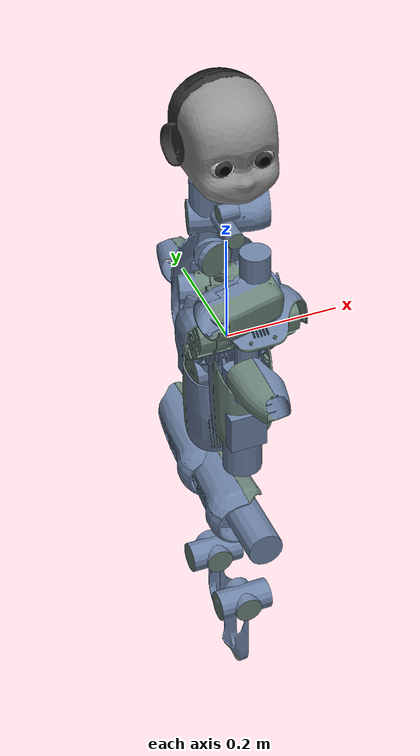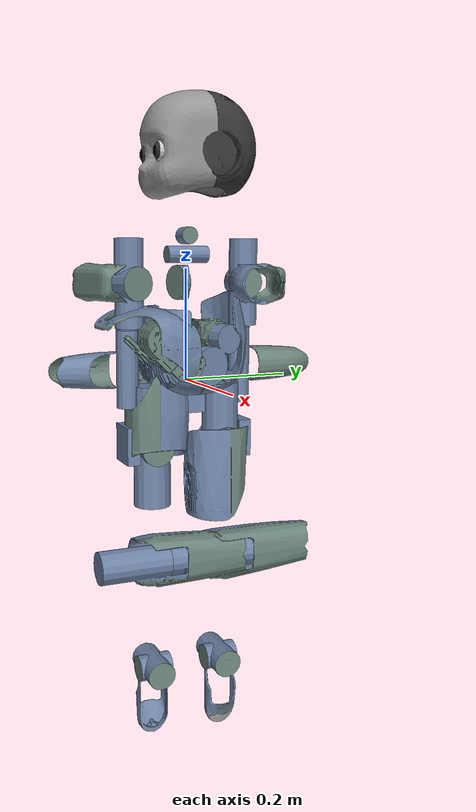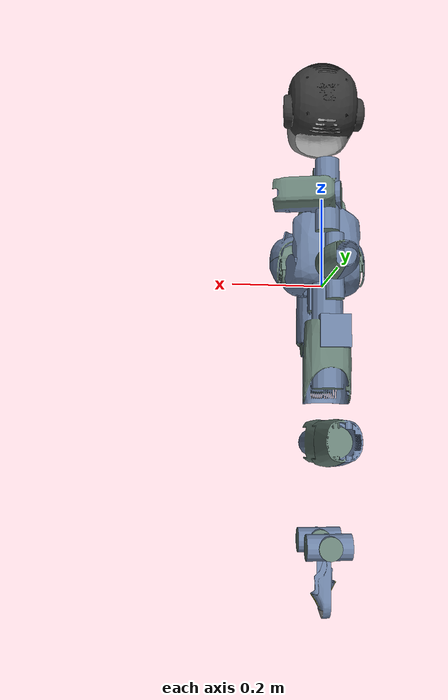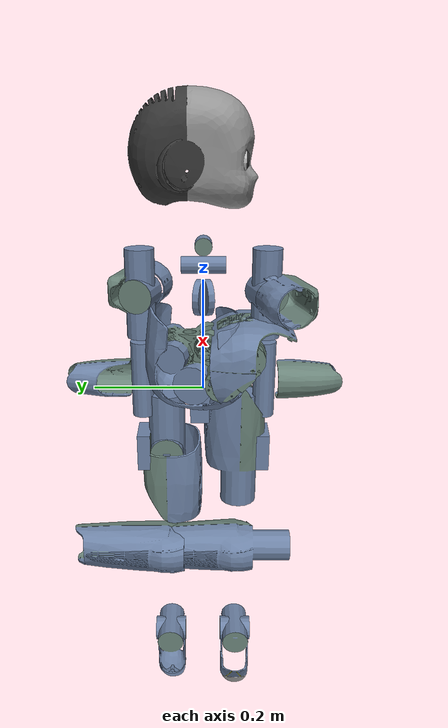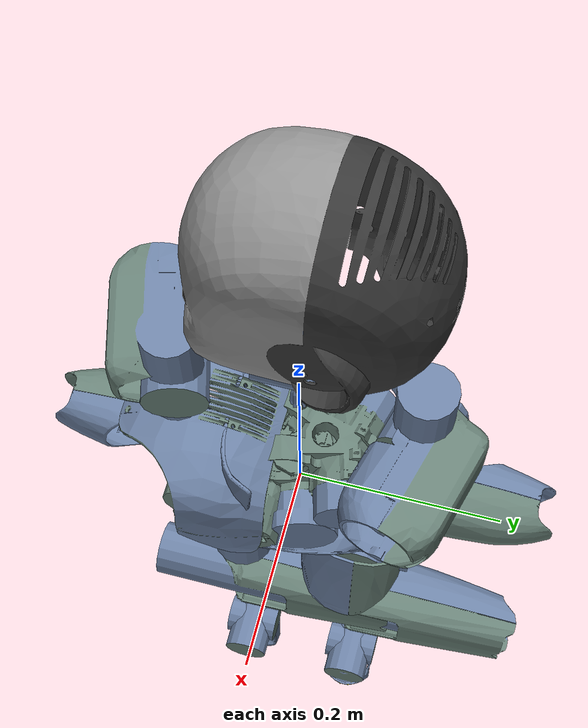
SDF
<sdf version='1.5'>
  <model name='iCub'>
    <link name='root_link'>
      <pose>0 0 0 0 -0 0</pose>
      <inertial>
        <pose>0 0 0 0 -0 0</pose>
        <mass>4.72</mass>
        <inertia>
          <ixx>0.01</ixx>
          <ixy>-3.30872e-24</ixy>
          <ixz>0</ixz>
          <iyy>0.01</iyy>
          <iyz>0</iyz>
          <izz>0.01</izz>
        </inertia>
      </inertial>
      <collision name='collision_root_link'>
        <pose>0 0 0 0 -0 3.14159</pose>
        <geometry>
          <mesh>
            <scale>1 1 1</scale>
            <uri>model://meshes/collision/icub_simple_collision_root_link.dae</uri>
          </mesh>
        </geometry>
      </collision>
      <visual name='visual_root_link'>
        <pose>0 0 0 0 -0 3.14159</pose>
        <geometry>
          <mesh>
            <scale>1 1 1</scale>
            <uri>model://meshes/visual/icub_root_link.dae</uri>
          </mesh>
        </geometry>
      </visual>
      <velocity_decay>
        <linear>0</linear>
        <angular>0</angular>
      </velocity_decay>
    </link>
    <link name='l_hip_1'>
      <pose>1.80709e-07 0.0681 -0.1199 2.65359e-06 1.57079 -2.65359e-06</pose>
      <inertial>
        <pose>0 -0.0782 0 0 -0 0</pose>
        <mass>0.754</mass>
        <inertia>
          <ixx>0.001</ixx>
          <ixy>2.059e-06</ixy>
          <ixz>1.451e-06</ixz>
          <iyy>0.001</iyy>
          <iyz>1.545e-06</iyz>
          <izz>0.001</izz>
        </inertia>
      </inertial>
      <collision name='l_hip_1_collision'>
        <pose>0 0 0 -0.785403 1.57079 -2.35619</pose>
        <geometry>
          <mesh>
            <scale>1 1 1</scale>
            <uri>model://meshes/collision/icub_simple_collision_l_hip_1.dae</uri>
          </mesh>
        </geometry>
      </collision>
      <visual name='l_hip_1_visual'>
        <pose>0 0 0 -0.785403 1.57079 -2.35619</pose>
        <geometry>
          <mesh>
            <scale>1 1 1</scale>
            <uri>model://meshes/visual/icub_l_hip_1.dae</uri>
          </mesh>
        </geometry>
      </visual>
      <velocity_decay>
        <linear>0</linear>
        <angular>0</angular>
      </velocity_decay>
    </link>
    <joint name='l_hip_pitch' type='revolute'>
      <child>l_hip_1</child>
      <parent>root_link</parent>
      <axis>
        <xyz>-5.30718e-06 -1 -9.74718e-12</xyz>
        <limit>
          <lower>-0.767945</lower>
          <upper>2.30383</upper>
          <effort>84</effort>
          <velocity>100</velocity>
        </limit>
        <dynamics>
          <damping>0.1</damping>
          <spring_reference>0</spring_reference>
          <spring_stiffness>0</spring_stiffness>
        </dynamics>
        <use_parent_model_frame>1</use_parent_model_frame>
      </axis>
    </joint>
    <link name='l_hip_2'>
      <pose>1.80709e-07 0.0681 -0.1199 3.14159 -7.34641e-06 -5.30718e-06</pose>
      <inertial>
        <pose>0 0 0.0255858 0 -0 0</pose>
        <mass>0.626</mass>
        <inertia>
          <ixx>0.00200779</ixx>
          <ixy>-7.4e-08</ixy>
          <ixz>1.0835e-05</ixz>
          <iyy>0.00200779</iyy>
          <iyz>-6.2e-08</iyz>
          <izz>0.002</izz>
        </inertia>
      </inertial>
      <collision name='l_hip_2_collision'>
        <pose>0 0 0 0.785363 -1.57079 2.35623</pose>
        <geometry>
          <mesh>
            <scale>1 1 1</scale>
            <uri>model://meshes/collision/icub_simple_collision_l_hip_2.dae</uri>
          </mesh>
        </geometry>
      </collision>
      <visual name='l_hip_2_visual'>
        <pose>0 0 0 0.785363 -1.57079 2.35623</pose>
        <geometry>
          <mesh>
            <scale>1 1 1</scale>
            <uri>model://meshes/visual/icub_l_hip_2.dae</uri>
          </mesh>
        </geometry>
      </visual>
      <velocity_decay>
        <linear>0</linear>
        <angular>0</angular>
      </velocity_decay>
    </link>
    <joint name='l_hip_roll' type='revolute'>
      <child>l_hip_2</child>
      <parent>l_hip_1</parent>
      <axis>
        <xyz>1 -5.30718e-06 7.34641e-06</xyz>
        <limit>
          <lower>-2.07694</lower>
          <upper>0.296706</upper>
          <effort>84</effort>
          <velocity>100</velocity>
        </limit>
        <dynamics>
          <damping>0.1</damping>
          <spring_reference>0</spring_reference>
          <spring_stiffness>0</spring_stiffness>
        </dynamics>
        <use_parent_model_frame>1</use_parent_model_frame>
      </axis>
    </joint>
    <link name='l_thigh'>
      <pose>1.80709e-07 0.0681 -0.1199 1.5708 -1e-05 -5.30717e-06</pose>
      <inertial>
        <pose>0.00144 -0.15943 -0.00039 0 -0 0</pose>
        <mass>2.175</mass>
        <inertia>
          <ixx>0.008</ixx>
          <ixy>-6.726e-05</ixy>
          <ixz>2.267e-06</ixz>
          <iyy>0.008</iyy>
          <iyz>3.63726e-05</iyz>
          <izz>0.008</izz>
        </inertia>
      </inertial>
      <collision name='l_thigh_collision'>
        <pose>0 0 0 -2.67795 1.57079 -1.10714</pose>
        <geometry>
          <mesh>
            <scale>1 1 1</scale>
            <uri>model://meshes/collision/icub_simple_collision_l_thigh.dae</uri>
          </mesh>
        </geometry>
      </collision>
      <visual name='l_thigh_visual'>
        <pose>0 0 0 -2.67795 1.57079 -1.10714</pose>
        <geometry>
          <mesh>
            <scale>1 1 1</scale>
            <uri>model://meshes/visual/icub_l_thigh.dae</uri>
          </mesh>
        </geometry>
      </visual>
      <velocity_decay>
        <linear>0</linear>
        <angular>0</angular>
      </velocity_decay>
    </link>
    <joint name='l_hip_yaw' type='revolute'>
      <child>l_thigh</child>
      <parent>l_hip_2</parent>
      <axis>
        <xyz>-1e-05 -1.01958e-06 1</xyz>
        <limit>
          <lower>-1.37881</lower>
          <upper>1.37881</upper>
          <effort>40</effort>
          <velocity>100</velocity>
        </limit>
        <dynamics>
          <damping>0.1</damping>
          <spring_reference>0</spring_reference>
          <spring_stiffness>0</spring_stiffness>
        </dynamics>
        <use_parent_model_frame>1</use_parent_model_frame>
      </axis>
    </joint>
    <link name='l_shank'>
      <pose>2.41671e-06 0.0681002 -0.3435 1.49636 -1.57078 -3.06716</pose>
      <inertial>
        <pose>-0.1071 0.00182 0.00211 0 -0 0</pose>
        <mass>1.264</mass>
        <inertia>
          <ixx>0.003</ixx>
          <ixy>0</ixy>
          <ixz>0</ixz>
          <iyy>0.0035</iyy>
          <iyz>0</iyz>
          <izz>0.005</izz>
        </inertia>
      </inertial>
      <collision name='l_shank_collision'>
        <pose>5.55112e-17 2.28232e-12 2.28224e-12 -3.14159 -7.26748e-17 1.5708</pose>
        <geometry>
          <mesh>
            <scale>1 1 1</scale>
            <uri>model://meshes/collision/icub_simple_collision_l_shank.dae</uri>
          </mesh>
        </geometry>
      </collision>
      <visual name='l_shank_visual'>
        <pose>5.55112e-17 2.28232e-12 2.28224e-12 -3.14159 -7.26748e-17 1.5708</pose>
        <geometry>
          <mesh>
            <scale>1 1 1</scale>
            <uri>model://meshes/visual/icub_l_shank.dae</uri>
          </mesh>
        </geometry>
      </visual>
      <velocity_decay>
        <linear>0</linear>
        <angular>0</angular>
      </velocity_decay>
    </link>
    <joint name='l_knee' type='revolute'>
      <child>l_shank</child>
      <parent>l_thigh</parent>
      <axis>
        <xyz>-7.96075e-06 -1 -1.01967e-06</xyz>
        <limit>
          <lower>-2.18166</lower>
          <upper>0.401426</upper>
          <effort>30</effort>
          <velocity>100</velocity>
        </limit>
        <dynamics>
          <damping>0.1</damping>
          <spring_reference>0</spring_reference>
          <spring_stiffness>0</spring_stiffness>
        </dynamics>
        <use_parent_model_frame>1</use_parent_model_frame>
      </axis>
    </joint>
    <link name='l_ankle_1'>
      <pose>5.3291e-06 0.0681004 -0.5565 -0.0744403 -1.57078 -3.06716</pose>
      <inertial>
        <pose>-0.0054 0.00163 0.0172 0 -0 0</pose>
        <mass>0.746</mass>
        <inertia>
          <ixx>0.001</ixx>
          <ixy>-7.081e-06</ixy>
          <ixz>4.1421e-05</ixz>
          <iyy>0.001</iyy>
          <iyz>2.0817e-05</iyz>
          <izz>0.001</izz>
        </inertia>
      </inertial>
      <collision name='l_ankle_1_collision'>
        <pose>1.11022e-16 -5.54333e-12 4.45647e-12 1.5708 1.53106e-11 1.53103e-11</pose>
        <geometry>
          <mesh>
            <scale>1 1 1</scale>
            <uri>model://meshes/collision/icub_simple_collision_l_ankle_1.dae</uri>
          </mesh>
        </geometry>
      </collision>
      <visual name='l_ankle_1_visual'>
        <pose>1.11022e-16 -5.54333e-12 4.45647e-12 1.5708 1.53106e-11 1.53103e-11</pose>
        <geometry>
          <mesh>
            <scale>1 1 1</scale>
            <uri>model://meshes/visual/icub_l_ankle_1.dae</uri>
          </mesh>
        </geometry>
      </visual>
      <velocity_decay>
        <linear>0</linear>
        <angular>0</angular>
      </velocity_decay>
    </link>
    <joint name='l_ankle_pitch' type='revolute'>
      <child>l_ankle_1</child>
      <parent>l_shank</parent>
      <axis>
        <xyz>1.1634e-05 1 1.01972e-06</xyz>
        <limit>
          <lower>-0.733038</lower>
          <upper>0.366519</upper>
          <effort>24</effort>
          <velocity>100</velocity>
        </limit>
        <dynamics>
          <damping>0.1</damping>
          <spring_reference>0</spring_reference>
          <spring_stiffness>0</spring_stiffness>
        </dynamics>
        <use_parent_model_frame>1</use_parent_model_frame>
      </axis>
    </joint>
    <link name='l_upper_foot'>
      <pose>5.3291e-06 0.0681004 -0.5565 -3.14159 -9.99999e-06 -1.1634e-05</pose>
          <inertial>
        <pose>0.0377737 0.000542627 0.022 0 -0 0</pose>
        <mass>0.861</mass>
        <inertia>
          <ixx>0.001</ixx>
          <ixy>0</ixy>
          <ixz>0</ixz>
          <iyy>0.0013</iyy>
          <iyz>0</iyz>
          <izz>0.0018</izz>
        </inertia>
      </inertial>
      <collision name='l_upper_foot_collision_l_foot'>
        <pose>-2.51615e-07 -5.54332e-12 -1.28558e-08 3.14159 1.57079 3.14159</pose>
        <geometry>
          <mesh>
            <scale>1 1 1</scale>
            <uri>model://meshes/collision/icub_simple_collision_l_foot.dae</uri>
          </mesh>
        </geometry>
      </collision>
      <visual name='l_upper_foot_visual_l_foot'>
        <pose>-2.51615e-07 -5.54332e-12 -1.28558e-08 3.14159 1.57079 3.14159</pose>
        <geometry>
          <mesh>
            <scale>1 1 1</scale>
            <uri>model://meshes/visual/icub_l_foot.dae</uri>
          </mesh>
        </geometry>
      </visual>
      <velocity_decay>
        <linear>0</linear>
        <angular>0</angular>
      </velocity_decay>
    </link>
    <joint name='l_ankle_roll' type='revolute'>
      <child>l_upper_foot</child>
      <parent>l_ankle_1</parent>
      <axis>
        <xyz>1 -1.1634e-05 9.99999e-06</xyz>
        <limit>
          <lower>-0.418879</lower>
          <upper>0.418879</upper>
          <effort>11</effort>
          <velocity>100</velocity>
        </limit>
        <dynamics>
          <damping>0.1</damping>
          <spring_reference>0</spring_reference>
          <spring_stiffness>0</spring_stiffness>
        </dynamics>
        <use_parent_model_frame>1</use_parent_model_frame>
      </axis>
    </joint>
    <link name='r_hip_1'>
      <pose>-1.80709e-07 -0.0681 -0.1199 3.14159 1.57079 -2.65359e-06</pose>
      <inertial>
        <pose>0 -0.0782 0 0 -0 0</pose>
        <mass>0.754</mass>
        <inertia>
          <ixx>0.001</ixx>
          <ixy>0</ixy>
          <ixz>0</ixz>
          <iyy>0.001</iyy>
          <iyz>0</iyz>
          <izz>0.001</izz>
        </inertia>
      </inertial>
      <collision name='r_hip_1_collision'>
        <pose>0 0 0 1.76819 -1.57079 2.76109</pose>
        <geometry>
          <mesh>
            <scale>1 1 1</scale>
            <uri>model://meshes/collision/icub_simple_collision_r_hip_1.dae</uri>
          </mesh>
        </geometry>
      </collision>
      <visual name='r_hip_1_visual'>
        <pose>0 0 0 1.76819 -1.57079 2.76109</pose>
        <geometry>
          <mesh>
            <scale>1 1 1</scale>
            <uri>model://meshes/visual/icub_r_hip_1.dae</uri>
          </mesh>
        </geometry>
      </visual>
      <velocity_decay>
        <linear>0</linear>
        <angular>0</angular>
      </velocity_decay>
    </link>
    <joint name='r_hip_pitch' type='revolute'>
      <child>r_hip_1</child>
      <parent>root_link</parent>
      <axis>
        <xyz>-2.65359e-06 -1 -1.05879e-22</xyz>
        <limit>
          <lower>-0.767945</lower>
          <upper>2.30383</upper>
          <effort>84</effort>
          <velocity>100</velocity>
        </limit>
        <dynamics>
          <damping>0.1</damping>
          <spring_reference>0</spring_reference>
          <spring_stiffness>0</spring_stiffness>
        </dynamics>
        <use_parent_model_frame>1</use_parent_model_frame>
      </axis>
    </joint>
    <link name='r_hip_2'>
      <pose>-1.80709e-07 -0.0681 -0.1199 -3.14159 -7.34641e-06 -2.65359e-06</pose>
      <inertial>
        <pose>0 0 0.0255858 0 -0 0</pose>
        <mass>0.626</mass>
        <inertia>
          <ixx>0.00200779</ixx>
          <ixy>6.61744e-24</ixy>
          <ixz>0</ixz>
          <iyy>0.00200779</iyy>
          <iyz>0</iyz>
          <izz>0.002</izz>
        </inertia>
      </inertial>
      <collision name='r_hip_2_collision'>
        <pose>0 0 0 -2.35627 -1.57079 2.35627</pose>
        <geometry>
          <mesh>
            <scale>1 1 1</scale>
            <uri>model://meshes/collision/icub_simple_collision_r_hip_2.dae</uri>
          </mesh>
        </geometry>
      </collision>
      <visual name='r_hip_2_visual'>
        <pose>0 0 0 -2.35627 -1.57079 2.35627</pose>
        <geometry>
          <mesh>
            <scale>1 1 1</scale>
            <uri>model://meshes/visual/icub_r_hip_2.dae</uri>
          </mesh>
        </geometry>
      </visual>
      <velocity_decay>
        <linear>0</linear>
        <angular>0</angular>
      </velocity_decay>
    </link>
    <joint name='r_hip_roll' type='revolute'>
      <child>r_hip_2</child>
      <parent>r_hip_1</parent>
      <axis>
        <xyz>-1 2.65359e-06 -7.34641e-06</xyz>
        <limit>
          <lower>-2.07694</lower>
          <upper>0.296706</upper>
          <effort>84</effort>
          <velocity>100</velocity>
        </limit>
        <dynamics>
          <damping>0.1</damping>
          <spring_reference>0</spring_reference>
          <spring_stiffness>0</spring_stiffness>
        </dynamics>
        <use_parent_model_frame>1</use_parent_model_frame>
      </axis>
    </joint>
    <link name='r_thigh'>
      <pose>-1.80709e-07 -0.0681 -0.1199 1.57079 -7.34641e-06 -2.65359e-06</pose>
      <inertial>
        <pose>0.00144 -0.15943 0.00039 0 -0 0</pose>
        <mass>2.175</mass>
        <inertia>
          <ixx>0.008</ixx>
          <ixy>-6.726e-05</ixy>
          <ixz>2.267e-06</ixz>
          <iyy>0.008</iyy>
          <iyz>3.63726e-05</iyz>
          <izz>0.008</izz>
        </inertia>
      </inertial>
      <collision name='r_thigh_collision'>
        <pose>0 0 0 1.57083 -1.57079 -3.26535e-05</pose>
        <geometry>
          <mesh>
            <scale>1 1 1</scale>
            <uri>model://meshes/collision/icub_simple_collision_r_thigh.dae</uri>
          </mesh>
        </geometry>
      </collision>
      <visual name='r_thigh_visual'>
        <pose>0 0 0 1.57083 -1.57079 -3.26535e-05</pose>
        <geometry>
          <mesh>
            <scale>1 1 1</scale>
            <uri>model://meshes/visual/icub_r_thigh.dae</uri>
          </mesh>
        </geometry>
      </visual>
      <velocity_decay>
        <linear>0</linear>
        <angular>0</angular>
      </velocity_decay>
    </link>
    <joint name='r_hip_yaw' type='revolute'>
      <child>r_thigh</child>
      <parent>r_hip_2</parent>
      <axis>
        <xyz>7.3464e-06 -3.67322e-06 -1</xyz>
        <limit>
          <lower>-1.37881</lower>
          <upper>1.37881</upper>
          <effort>40</effort>
          <velocity>100</velocity>
        </limit>
        <dynamics>
          <damping>0.1</damping>
          <spring_reference>0</spring_reference>
          <spring_stiffness>0</spring_stiffness>
        </dynamics>
        <use_parent_model_frame>1</use_parent_model_frame>
      </axis>
    </joint>
    <link name='r_shank'>
      <pose>1.46195e-06 -0.0681008 -0.3435 1.89254 -1.57078 2.81984</pose>
      <inertial>
        <pose>-0.1071 0.00182 -0.00211 0 -0 0</pose>
        <mass>1.264</mass>
        <inertia>
          <ixx>0.003</ixx>
          <ixy>0</ixy>
          <ixz>0</ixz>
          <iyy>0.0035</iyy>
          <iyz>0</iyz>
          <izz>0.005</izz>
        </inertia>
      </inertial>
      <collision name='r_shank_collision'>
        <pose>5.55112e-17 2.28232e-12 -2.77556e-17 3.14159 2.71835e-16 1.5708</pose>
        <geometry>
          <mesh>
            <scale>1 1 1</scale>
            <uri>model://meshes/collision/icub_simple_collision_r_shank.dae</uri>
          </mesh>
        </geometry>
      </collision>
      <visual name='r_shank_visual'>
        <pose>5.55112e-17 2.28232e-12 -2.77556e-17 3.14159 2.71835e-16 1.5708</pose>
        <geometry>
          <mesh>
            <scale>1 1 1</scale>
            <uri>model://meshes/visual/icub_r_shank.dae</uri>
          </mesh>
        </geometry>
      </visual>
      <velocity_decay>
        <linear>0</linear>
        <angular>0</angular>
      </velocity_decay>
    </link>
    <joint name='r_knee' type='revolute'>
      <child>r_shank</child>
      <parent>r_thigh</parent>
      <axis>
        <xyz>-5.30721e-06 -1 3.67318e-06</xyz>
        <limit>
          <lower>-2.18166</lower>
          <upper>0.401426</upper>
          <effort>30</effort>
          <velocity>100</velocity>
        </limit>
        <dynamics>
          <damping>0.1</damping>
          <spring_reference>0</spring_reference>
          <spring_stiffness>0</spring_stiffness>
        </dynamics>
        <use_parent_model_frame>1</use_parent_model_frame>
      </axis>
    </joint>
    <link name='r_ankle_1'>
      <pose>3.80912e-06 -0.0681016 -0.5565 -2.81984 -1.57078 2.81984</pose>
      <inertial>
        <pose>-0.0054 0.00163 -0.0172 0 -0 0</pose>
        <mass>0.746</mass>
        <inertia>
          <ixx>0.001</ixx>
          <ixy>-1.69407e-21</ixy>
          <ixz>1.35525e-20</ixz>
          <iyy>0.001</iyy>
          <iyz>3.38813e-21</iyz>
          <izz>0.001</izz>
        </inertia>
      </inertial>
      <collision name='r_ankle_1_collision'>
        <pose>1.11022e-16 -1.08707e-12 -4.45647e-12 -1.5708 -1.53106e-11 5.10353e-12</pose>
        <geometry>
          <mesh>
            <scale>1 1 1</scale>
            <uri>model://meshes/collision/icub_simple_collision_r_ankle_1.dae</uri>
          </mesh>
        </geometry>
      </collision>
      <visual name='r_ankle_1_visual'>
        <pose>1.11022e-16 -1.08707e-12 -4.45647e-12 -1.5708 -1.53106e-11 5.10353e-12</pose>
        <geometry>
          <mesh>
            <scale>1 1 1</scale>
            <uri>model://meshes/visual/icub_r_ankle_1.dae</uri>
          </mesh>
        </geometry>
      </visual>
      <velocity_decay>
        <linear>0</linear>
        <angular>0</angular>
      </velocity_decay>
    </link>
    <joint name='r_ankle_pitch' type='revolute'>
      <child>r_ankle_1</child>
      <parent>r_shank</parent>
      <axis>
        <xyz>1.634e-06 1 -3.67322e-06</xyz>
        <limit>
          <lower>-0.733038</lower>
          <upper>0.366519</upper>
          <effort>24</effort>
          <velocity>100</velocity>
        </limit>
        <dynamics>
          <damping>0.1</damping>
          <spring_reference>0</spring_reference>
          <spring_stiffness>0</spring_stiffness>
        </dynamics>
        <use_parent_model_frame>1</use_parent_model_frame>
      </axis>
    </joint>
    <link name='r_upper_foot'>
      <pose>3.80912e-06 -0.0681016 -0.5565 3.14159 -1.4236e-05 1.40032e-07</pose>
      <inertial>
        <pose>0.0377737 0.000542627 0.022 0 -0 0</pose>
        <mass>0.861</mass>
        <inertia>
          <ixx>0.001</ixx>
          <ixy>0</ixy>
          <ixz>0</ixz>
          <iyy>0.0013</iyy>
          <iyz>0</iyz>
          <izz>0.0018</izz>
        </inertia>
      </inertial>
      <collision name='r_upper_foot_collision_r_foot'>
        <pose>-2.51615e-07 1.08706e-12 -1.28558e-08 4.04298e-06 1.57079 -3.14159</pose>
        <geometry>
          <mesh>
            <scale>1 1 1</scale>
            <uri>model://meshes/collision/icub_simple_collision_r_foot.dae</uri>
          </mesh>
        </geometry>
      </collision>
      <visual name='r_upper_foot_visual_r_foot'>
        <pose>-2.51615e-07 1.08706e-12 -1.28558e-08 4.04298e-06 1.57079 -3.14159</pose>
        <geometry>
          <mesh>
            <scale>1 1 1</scale>
            <uri>model://meshes/visual/icub_r_foot.dae</uri>
          </mesh>
        </geometry>
      </visual>
      <velocity_decay>
        <linear>0</linear>
        <angular>0</angular>
      </velocity_decay>
    </link>
    <joint name='r_ankle_roll' type='revolute'>
      <child>r_upper_foot</child>
      <parent>r_ankle_1</parent>
      <axis>
        <xyz>-1 -1.40032e-07 -1.4236e-05</xyz>
        <limit>
          <lower>-0.418879</lower>
          <upper>0.418879</upper>
          <effort>11</effort>
          <velocity>100</velocity>
        </limit>
        <dynamics>
          <damping>0.1</damping>
          <spring_reference>0</spring_reference>
          <spring_stiffness>0</spring_stiffness>
        </dynamics>
        <use_parent_model_frame>1</use_parent_model_frame>
      </axis>
    </joint>
    <link name='lap_belt_1'>
      <pose>0 0 0 3.14159 -1.57079 3.14159</pose>
      <inertial>
        <pose>0 0 0 0 -0 0</pose>
        <mass>0.1</mass>
        <inertia>
          <ixx>0.0004</ixx>
          <ixy>-4.263e-05</ixy>
          <ixz>-3.889e-08</ixz>
          <iyy>0.0004</iyy>
          <iyz>0</iyz>
          <izz>0.0004</izz>
        </inertia>
      </inertial>
      <collision name='lap_belt_1_collision'>
        <pose>0 0 0 -1.5708 5.10314e-12 1.11022e-16</pose>
        <geometry>
          <mesh>
            <scale>1 1 1</scale>
            <uri>model://meshes/collision/icub_simple_collision_lap_belt_1.dae</uri>
          </mesh>
        </geometry>
      </collision>
      <visual name='lap_belt_1_visual'>
        <pose>0 0 0 -1.5708 5.10314e-12 1.11022e-16</pose>
        <geometry>
          <mesh>
            <scale>1 1 1</scale>
            <uri>model://meshes/visual/icub_lap_belt_1.dae</uri>
          </mesh>
        </geometry>
      </visual>
      <velocity_decay>
        <linear>0</linear>
        <angular>0</angular>
      </velocity_decay>
    </link>
    <joint name='torso_pitch' type='revolute'>
      <child>lap_belt_1</child>
      <parent>root_link</parent>
      <axis>
        <xyz>5.30718e-06 1 2.11758e-22</xyz>
        <limit>
          <lower>-0.383972</lower>
          <upper>1.46608</upper>
          <effort>36</effort>
          <velocity>100</velocity>
        </limit>
        <dynamics>
          <damping>0.1</damping>
          <spring_reference>0</spring_reference>
          <spring_stiffness>0</spring_stiffness>
        </dynamics>
        <use_parent_model_frame>1</use_parent_model_frame>
      </axis>
    </joint>
    <link name='lap_belt_2'>
      <pose>-1.17543e-07 6.23819e-13 0.032 -3.14159 3.67321e-06 -1.5708</pose>
      <inertial>
        <pose>0 0 0 0 -0 0</pose>
        <mass>0.1</mass>
        <inertia>
          <ixx>0.0003</ixx>
          <ixy>-1.923e-06</ixy>
          <ixz>5.095e-05</ixz>
          <iyy>0.0003</iyy>
          <iyz>-3.849e-07</iyz>
          <izz>0.0003</izz>
        </inertia>
      </inertial>
      <velocity_decay>
        <linear>0</linear>
        <angular>0</angular>
      </velocity_decay>
    </link>
    <joint name='torso_roll' type='revolute'>
      <child>lap_belt_2</child>
      <parent>lap_belt_1</parent>
      <axis>
        <xyz>-1 5.30719e-06 -7.34641e-06</xyz>
        <limit>
          <lower>-0.680678</lower>
          <upper>0.680678</upper>
          <effort>80</effort>
          <velocity>100</velocity>
        </limit>
        <dynamics>
          <damping>0.1</damping>
          <spring_reference>0</spring_reference>
          <spring_stiffness>0</spring_stiffness>
        </dynamics>
        <use_parent_model_frame>1</use_parent_model_frame>
      </axis>
    </joint>
    <link name='chest'>
      <pose>0.00549988 -2.91889e-08 0.032 1.5708 -7.34642e-06 -1.63399e-06</pose>
      <inertial>
        <pose>0.00222898 0.075 -1.18362e-17 0 -0 0</pose>
        <mass>4.81</mass>
        <inertia>
          <ixx>0.018</ixx>
          <ixy>0</ixy>
          <ixz>0</ixz>
          <iyy>0.018</iyy>
          <iyz>0</iyz>
          <izz>0.018</izz>
        </inertia>
      </inertial>
      <collision name='chest_collision'>
        <pose>-0.0055 -6.93889e-18 -3.55271e-18 -1.10717 -1.57079 2.67798</pose>
        <geometry>
          <mesh>
            <scale>1 1 1</scale>
            <uri>model://meshes/collision/icub_simple_collision_chest.dae</uri>
          </mesh>
        </geometry>
      </collision>
      <visual name='chest_visual'>
        <pose>-0.0055 -6.93889e-18 -3.55271e-18 -1.10717 -1.57079 2.67798</pose>
        <geometry>
          <mesh>
            <scale>1 1 1</scale>
            <uri>model://meshes/visual/icub_chest.dae</uri>
          </mesh>
        </geometry>
      </visual>
      <velocity_decay>
        <linear>0</linear>
        <angular>0</angular>
      </velocity_decay>
    </link>
    <joint name='torso_yaw' type='revolute'>
      <child>chest</child>
      <parent>lap_belt_2</parent>
      <axis>
        <xyz>7.34642e-06 -3.89888e-11 -1</xyz>
        <limit>
          <lower>-1.02974</lower>
          <upper>1.02974</upper>
          <effort>80</effort>
          <velocity>100</velocity>
        </limit>
        <dynamics>
          <damping>0.1</damping>
          <spring_reference>0</spring_reference>
          <spring_stiffness>0</spring_stiffness>
        </dynamics>
        <use_parent_model_frame>1</use_parent_model_frame>
      </axis>
    </joint>
    <link name='l_shoulder_1'>
      <pose>0.010749 0.11026 0.1753 -0.261794 -1.57079 3.14159</pose>
      <inertial>
        <pose>-5e-06 0.0187 -0.00119 0 -0 0</pose>
        <mass>0.189</mass>
        <inertia>
          <ixx>0.0004</ixx>
          <ixy>9e-09</ixy>
          <ixz>0</ixz>
          <iyy>0.0004</iyy>
          <iyz>-1.7e-08</iyz>
          <izz>0.0004</izz>
        </inertia>
      </inertial>
      <collision name='l_shoulder_1_collision'>
        <pose>3.08642e-14 0.109285 -0.00521101 -0.301063 1.57079 -1.87186</pose>
        <geometry>
          <mesh>
            <scale>1 1 1</scale>
            <uri>model://meshes/collision/icub_simple_collision_l_shoulder_1.dae</uri>
          </mesh>
        </geometry>
      </collision>
      <visual name='l_shoulder_1_visual'>
        <pose>3.08642e-14 0.109285 -0.00521101 -0.301063 1.57079 -1.87186</pose>
        <geometry>
          <mesh>
            <scale>1 1 1</scale>
            <uri>model://meshes/visual/icub_l_shoulder_1.dae</uri>
          </mesh>
        </geometry>
      </visual>
      <velocity_decay>
        <linear>0</linear>
        <angular>0</angular>
      </velocity_decay>
    </link>
    <joint name='l_shoulder_pitch' type='revolute'>
      <child>l_shoulder_1</child>
      <parent>chest</parent>
      <axis>
        <xyz>0.258818 0.965926 2.85203e-06</xyz>
        <limit>
          <lower>-1.65806</lower>
          <upper>0.0872665</upper>
          <effort>84</effort>
          <velocity>100</velocity>
        </limit>
        <dynamics>
          <damping>0.1</damping>
          <spring_reference>0</spring_reference>
          <spring_stiffness>0</spring_stiffness>
        </dynamics>
        <use_parent_model_frame>1</use_parent_model_frame>
      </axis>
    </joint>
    <link name='l_shoulder_2'>
      <pose>0.010749 0.11026 0.1753 3.14159 8.21174e-07 1.309</pose>
      <inertial>
        <pose>9.4e-05 -0.00627 0.0166 0 -0 0</pose>
        <mass>0.179</mass>
        <inertia>
          <ixx>0.0004</ixx>
          <ixy>4.66e-07</ixy>
          <ixz>3.65e-07</ixz>
          <iyy>0.0004</iyy>
          <iyz>-2.0524e-05</iyz>
          <izz>0.0004</izz>
        </inertia>
      </inertial>
      <collision name='l_shoulder_2_collision'>
        <pose>-0.00154529 -0.00521101 -1.11181e-12 -2.14033 1.57079 -0.569533</pose>
        <geometry>
          <mesh>
            <scale>1 1 1</scale>
            <uri>model://meshes/collision/icub_simple_collision_l_shoulder_2.dae</uri>
          </mesh>
        </geometry>
      </collision>
      <visual name='l_shoulder_2_visual'>
        <pose>-0.00154529 -0.00521101 -1.11181e-12 -2.14033 1.57079 -0.569533</pose>
        <geometry>
          <mesh>
            <scale>1 1 1</scale>
            <uri>model://meshes/visual/icub_l_shoulder_2.dae</uri>
          </mesh>
        </geometry>
      </visual>
      <velocity_decay>
        <linear>0</linear>
        <angular>0</angular>
      </velocity_decay>
    </link>
    <joint name='l_shoulder_roll' type='revolute'>
      <child>l_shoulder_2</child>
      <parent>l_shoulder_1</parent>
      <axis>
        <xyz>0.965926 -0.258818 6.97095e-06</xyz>
        <limit>
          <lower>0</lower>
          <upper>2.80649</upper>
          <effort>84</effort>
          <velocity>100</velocity>
        </limit>
        <dynamics>
          <damping>0.1</damping>
          <spring_reference>0</spring_reference>
          <spring_stiffness>0</spring_stiffness>
        </dynamics>
        <use_parent_model_frame>1</use_parent_model_frame>
      </axis>
    </joint>
    <link name='l_upper_arm'>
      <pose>0.010749 0.11026 0.1753 3.14159 -6.5209e-06 -1.634e-06</pose>
      <inertial>
        <pose>0.01321 -6.41648e-05 0.08938 0 -0 0</pose>
        <mass>0.884</mass>
        <inertia>
          <ixx>0.00102921</ixx>
          <ixy>-9.0277e-07</ixy>
          <ixz>-6.334e-05</ixz>
          <iyy>0.00103031</iyy>
          <iyz>4.03223e-06</iyz>
          <izz>0.0010011</izz>
        </inertia>
      </inertial>
      <collision name='l_upper_arm_collision_l_arm'>
        <pose>-0.0054334 0.000143363 -5.27628e-10 2.7225e-06 -3.54804e-06 -1.309</pose>
        <geometry>
          <mesh>
            <scale>1 1 1</scale>
            <uri>model://meshes/collision/icub_simple_collision_l_arm.dae</uri>
          </mesh>
        </geometry>
      </collision>
      <visual name='l_upper_arm_visual_l_arm'>
        <pose>-0.0054334 0.000143363 -5.27628e-10 2.7225e-06 -3.54804e-06 -1.309</pose>
        <geometry>
          <mesh>
            <scale>1 1 1</scale>
            <uri>model://meshes/visual/icub_l_arm.dae</uri>
          </mesh>
        </geometry>
      </visual>
      <velocity_decay>
        <linear>0</linear>
        <angular>0</angular>
      </velocity_decay>
    </link>
    <joint name='l_shoulder_yaw' type='revolute'>
      <child>l_upper_arm</child>
      <parent>l_shoulder_2</parent>
      <axis>
        <xyz>6.52089e-06 -2.5974e-06 -1</xyz>
        <limit>
          <lower>-0.645772</lower>
          <upper>1.74533</upper>
          <effort>34</effort>
          <velocity>100</velocity>
        </limit>
        <dynamics>
          <damping>0.1</damping>
          <spring_reference>0</spring_reference>
          <spring_stiffness>0</spring_stiffness>
        </dynamics>
        <use_parent_model_frame>1</use_parent_model_frame>
      </axis>
    </joint>
    <link name='l_elbow_1'>
      <pose>0.02575 0.11026 0.0230202 3.14159 -6.5209e-06 -1.634e-06</pose>
      <inertial>
        <pose>-0.0013 0.00371 -0.00105 0 -0 0</pose>
        <mass>0.1</mass>
        <inertia>
          <ixx>0.0002</ixx>
          <ixy>-5.15e-07</ixy>
          <ixz>-4.08e-07</ixz>
          <iyy>0.0002</iyy>
          <iyz>-3.71e-07</iyz>
          <izz>0.0002</izz>
        </inertia>
      </inertial>
      <velocity_decay>
        <linear>0</linear>
        <angular>0</angular>
      </velocity_decay>
    </link>
    <joint name='l_elbow' type='revolute'>
      <child>l_elbow_1</child>
      <parent>l_upper_arm</parent>
      <axis>
        <xyz>-1.63402e-06 -1 2.59739e-06</xyz>
        <limit>
          <lower>0.0959931</lower>
          <upper>1.85005</upper>
          <effort>20</effort>
          <velocity>100</velocity>
        </limit>
        <dynamics>
          <damping>0.1</damping>
          <spring_reference>0</spring_reference>
          <spring_stiffness>0</spring_stiffness>
        </dynamics>
        <use_parent_model_frame>1</use_parent_model_frame>
      </axis>
    </joint>
    <link name='l_forearm'>
      <pose>0.01075 0.11026 0.0230201 -1.5708 2.59741e-06 1.5708</pose>
      <inertial>
        <pose>0.000347 0.066 0.00476 0 -0 0</pose>
        <mass>0.525</mass>
        <inertia>
          <ixx>0.0002</ixx>
          <ixy>4.337e-06</ixy>
          <ixz>2.39e-07</ixz>
          <iyy>0.0002</iyy>
          <iyz>1.9381e-05</iyz>
          <izz>0.0002</izz>
        </inertia>
      </inertial>
      <collision name='l_forearm_collision'>
        <pose>-0.000143922 -1.25974e-12 0.0204334 -2.66395 1.57079 -1.09315</pose>
        <geometry>
          <mesh>
            <scale>1 1 1</scale>
            <uri>model://meshes/collision/icub_simple_collision_l_forearm.dae</uri>
          </mesh>
        </geometry>
      </collision>
      <visual name='l_forearm_visual'>
        <pose>-0.000143922 -1.25974e-12 0.0204334 -2.66395 1.57079 -1.09315</pose>
        <geometry>
          <mesh>
            <scale>1 1 1</scale>
            <uri>model://meshes/visual/icub_l_forearm.dae</uri>
          </mesh>
        </geometry>
      </visual>
      <velocity_decay>
        <linear>0</linear>
        <angular>0</angular>
      </velocity_decay>
    </link>
    <joint name='l_wrist_prosup' type='revolute'>
      <child>l_forearm</child>
      <parent>l_elbow_1</parent>
      <axis>
        <xyz>2.84769e-06 -2.59741e-06 -1</xyz>
        <limit>
          <lower>-0.872665</lower>
          <upper>0.872665</upper>
          <effort>0.45</effort>
          <velocity>100</velocity>
        </limit>
        <dynamics>
          <damping>0.1</damping>
          <spring_reference>0</spring_reference>
          <spring_stiffness>0</spring_stiffness>
        </dynamics>
        <use_parent_model_frame>1</use_parent_model_frame>
      </axis>
    </joint>
    <link name='l_wrist_1'>
      <pose>0.0107504 0.110259 -0.11428 -2.7153 1.57079 -1.14451</pose>
      <inertial>
        <pose>0 0 0 0 -0 0</pose>
        <mass>0.1</mass>
        <inertia>
          <ixx>0.0002</ixx>
          <ixy>0</ixy>
          <ixz>0</ixz>
          <iyy>0.0002</iyy>
          <iyz>0</iyz>
          <izz>0.0002</izz>
        </inertia>
      </inertial>
      <velocity_decay>
        <linear>0</linear>
        <angular>0</angular>
      </velocity_decay>
    </link>
    <joint name='l_wrist_pitch' type='revolute'>
      <child>l_wrist_1</child>
      <parent>l_forearm</parent>
      <axis>
        <xyz>-1 1.63401e-06 -2.84771e-06</xyz>
        <limit>
          <lower>-1.13446</lower>
          <upper>0.174533</upper>
          <effort>0.65</effort>
          <velocity>100</velocity>
        </limit>
        <dynamics>
          <damping>0.1</damping>
          <spring_reference>0</spring_reference>
          <spring_stiffness>0</spring_stiffness>
        </dynamics>
        <use_parent_model_frame>1</use_parent_model_frame>
      </axis>
    </joint>
    <link name='l_hand'>
      <pose>0.0107504 0.110259 -0.11428 -2.7153 1.57079 -1.14451</pose>
      <inertial>
        <pose>0.07023 -0.00805 -0.007 0 -0 0</pose>
        <mass>0.213</mass>
        <inertia>
          <ixx>0.0001</ixx>
          <ixy>1.278e-05</ixy>
          <ixz>4.823e-06</ixz>
          <iyy>0.0001</iyy>
          <iyz>-1.8188e-05</iyz>
          <izz>0.0001</izz>
        </inertia>
      </inertial>
      <collision name='l_hand_collision'>
        <pose>-1.25974e-12 0.0204334 -0.000143922 5.10271e-12 -2.6418e-12 1.49622e-11</pose>
        <geometry>
          <mesh>
            <scale>1 1 1</scale>
            <uri>model://meshes/collision/icub_simple_collision_l_hand.dae</uri>
          </mesh>
        </geometry>
      </collision>
      <visual name='l_hand_visual'>
        <pose>-1.25974e-12 0.0204334 -0.000143922 5.10271e-12 -2.6418e-12 1.49622e-11</pose>
        <geometry>
          <mesh>
            <scale>1 1 1</scale>
            <uri>model://meshes/visual/icub_l_hand.dae</uri>
          </mesh>
        </geometry>
      </visual>
      <velocity_decay>
        <linear>0</linear>
        <angular>0</angular>
      </velocity_decay>
    </link>
    <joint name='l_wrist_yaw' type='revolute'>
      <child>l_hand</child>
      <parent>l_wrist_1</parent>
      <axis>
        <xyz>1.63403e-06 1 -6.27061e-06</xyz>
        <limit>
          <lower>-0.436332</lower>
          <upper>0.436332</upper>
          <effort>0.65</effort>
          <velocity>100</velocity>
        </limit>
        <dynamics>
          <damping>0.1</damping>
          <spring_reference>0</spring_reference>
          <spring_stiffness>0</spring_stiffness>
        </dynamics>
        <use_parent_model_frame>1</use_parent_model_frame>
      </axis>
    </joint>
    <link name='neck_1'>
      <pose>0.00780846 -3.29559e-08 0.2253 6.12201e-06 -1.57079 3.14159</pose>
      <inertial>
        <pose>0 0 0 0 -0 0</pose>
        <mass>0.1</mass>
        <inertia>
          <ixx>0.0002</ixx>
          <ixy>0</ixy>
          <ixz>0</ixz>
          <iyy>0.0002</iyy>
          <iyz>0</iyz>
          <izz>0.0002</izz>
        </inertia>
      </inertial>
      <collision name='neck_1_collision'>
        <pose>-5.55112e-17 9.62889e-13 -0.0055 3.14159 -1.57079 1.5708</pose>
        <geometry>
          <mesh>
            <scale>1 1 1</scale>
            <uri>model://meshes/collision/icub_simple_collision_neck_1.dae</uri>
          </mesh>
        </geometry>
      </collision>
      <visual name='neck_1_visual'>
        <pose>-5.55112e-17 9.62889e-13 -0.0055 3.14159 -1.57079 1.5708</pose>
        <geometry>
          <mesh>
            <scale>1 1 1</scale>
            <uri>model://meshes/visual/icub_neck_1.dae</uri>
          </mesh>
        </geometry>
      </visual>
      <velocity_decay>
        <linear>0</linear>
        <angular>0</angular>
      </velocity_decay>
    </link>
    <joint name='neck_pitch' type='revolute'>
      <child>neck_1</child>
      <parent>chest</parent>
      <axis>
        <xyz>2.03922e-06 -1 6.74623e-11</xyz>
        <limit>
          <lower>-0.698132</lower>
          <upper>0.523599</upper>
          <effort>20</effort>
          <velocity>100</velocity>
        </limit>
        <dynamics>
          <damping>0.1</damping>
          <spring_reference>0</spring_reference>
          <spring_stiffness>0</spring_stiffness>
        </dynamics>
        <use_parent_model_frame>1</use_parent_model_frame>
      </axis>
    </joint>
    <link name='neck_2'>
      <pose>0.00780836 -3.29555e-08 0.2348 -1.46928e-05 3.67327e-06 1.5708</pose>
      <inertial>
        <pose>0 0 0 0 -0 0</pose>
        <mass>0.1</mass>
        <inertia>
          <ixx>0.0002</ixx>
          <ixy>0</ixy>
          <ixz>0</ixz>
          <iyy>0.0002</iyy>
          <iyz>0</iyz>
          <izz>0.0002</izz>
        </inertia>
      </inertial>
      <collision name='neck_2_collision'>
        <pose>-9.62885e-13 0.0055 0.0235 -3.14157 -1.57079 -1.57082</pose>
        <geometry>
          <mesh>
            <scale>1 1 1</scale>
            <uri>model://meshes/collision/icub_simple_collision_neck_2.dae</uri>
          </mesh>
        </geometry>
      </collision>
      <visual name='neck_2_visual'>
        <pose>-9.62885e-13 0.0055 0.0235 -3.14157 -1.57079 -1.57082</pose>
        <geometry>
          <mesh>
            <scale>1 1 1</scale>
            <uri>model://meshes/visual/icub_neck_2.dae</uri>
          </mesh>
        </geometry>
      </visual>
      <velocity_decay>
        <linear>0</linear>
        <angular>0</angular>
      </velocity_decay>
    </link>
    <joint name='neck_roll' type='revolute'>
      <child>neck_2</child>
      <parent>neck_1</parent>
      <axis>
        <xyz>1 2.03923e-06 1.46928e-05</xyz>
        <limit>
          <lower>-1.22173</lower>
          <upper>1.0472</upper>
          <effort>20</effort>
          <velocity>100</velocity>
        </limit>
        <dynamics>
          <damping>0.1</damping>
          <spring_reference>0</spring_reference>
          <spring_stiffness>0</spring_stiffness>
        </dynamics>
        <use_parent_model_frame>1</use_parent_model_frame>
      </axis>
    </joint>
    <link name='head'>
      <pose>0.00780836 -3.29555e-08 0.2348 -1.5708 1.46928e-05 -3.14159</pose>
      <inertial>
        <pose>0.0185 -0.1108 6.78454e-18 0 -0 0</pose>
        <mass>1.33687</mass>
        <inertia>
          <ixx>0.006</ixx>
          <ixy>0</ixy>
          <ixz>0</ixz>
          <iyy>0.006</iyy>
          <iyz>0</iyz>
          <izz>0.006</izz>
        </inertia>
      </inertial>
      <collision name='head_collision'>
        <pose>0.0045 -0.0235 9.42472e-13 -1.32582 1.57079 -2.89662</pose>
        <geometry>
          <mesh>
            <scale>1 1 1</scale>
            <uri>model://meshes/collision/icub_simple_collision_head.dae</uri>
          </mesh>
        </geometry>
      </collision>
      <visual name='head_visual'>
        <pose>0.0045 -0.0235 9.42472e-13 -1.32582 1.57079 -2.89662</pose>
        <geometry>
          <mesh>
            <scale>1 1 1</scale>
            <uri>model://meshes/visual/icub_head.dae</uri>
          </mesh>
        </geometry>
      </visual>
      <velocity_decay>
        <linear>0</linear>
        <angular>0</angular>
      </velocity_decay>
       <sensor name="imu_sensor" type="imu">
        <always_on>1</always_on>
        <update_rate>100</update_rate>
        <visualize>1</visualize>
        <imu/>
        <plugin filename="libgazebo_yarp_imu.so" name="iCub_yarp_gazebo_plugin_IMU">
            <yarpConfigurationFile>model://conf/gazebo_icub_inertial.ini</yarpConfigurationFile>
        </plugin>
        <pose>0.0185 -0.1108 0.0066 1.5708 -0 0</pose>
      </sensor>
    </link>
    <joint name='neck_yaw' type='revolute'>
      <child>head</child>
      <parent>neck_2</parent>
      <axis>
        <xyz>-1.46928e-05 3.75006e-11 1</xyz>
        <limit>
          <lower>-0.959931</lower>
          <upper>0.959931</upper>
          <effort>20</effort>
          <velocity>100</velocity>
        </limit>
        <dynamics>
          <damping>0.1</damping>
          <spring_reference>0</spring_reference>
          <spring_stiffness>0</spring_stiffness>
        </dynamics>
        <use_parent_model_frame>1</use_parent_model_frame>
      </axis>
    </joint>
    <link name='r_shoulder_1'>
      <pose>0.0107486 -0.11026 0.1753 -2.87979 -1.57079 3.14159</pose>
      <inertial>
        <pose>5e-06 0.0187 0.00119 0 -0 0</pose>
        <mass>0.189</mass>
        <inertia>
          <ixx>0.0004</ixx>
          <ixy>2.1e-08</ixy>
          <ixz>-1e-09</ixz>
          <iyy>0.0004</iyy>
          <iyz>4.22e-06</iyz>
          <izz>0.0004</izz>
        </inertia>
      </inertial>
      <collision name='r_shoulder_1_collision'>
        <pose>-3.08642e-14 0.109285 0.00521101 3.06003 1.57079 -1.65235</pose>
        <geometry>
          <mesh>
            <scale>1 1 1</scale>
            <uri>model://meshes/collision/icub_simple_collision_r_shoulder_1.dae</uri>
          </mesh>
        </geometry>
      </collision>
      <visual name='r_shoulder_1_visual'>
        <pose>-3.08642e-14 0.109285 0.00521101 3.06003 1.57079 -1.65235</pose>
        <geometry>
          <mesh>
            <scale>1 1 1</scale>
            <uri>model://meshes/visual/icub_r_shoulder_1.dae</uri>
          </mesh>
        </geometry>
      </visual>
      <velocity_decay>
        <linear>0</linear>
        <angular>0</angular>
      </velocity_decay>
    </link>
    <joint name='r_shoulder_pitch' type='revolute'>
      <child>r_shoulder_1</child>
      <parent>chest</parent>
      <axis>
        <xyz>-0.258815 0.965927 -2.85208e-06</xyz>
        <limit>
          <lower>-1.65806</lower>
          <upper>0.0872665</upper>
          <effort>84</effort>
          <velocity>100</velocity>
        </limit>
        <dynamics>
          <damping>0.1</damping>
          <spring_reference>0</spring_reference>
          <spring_stiffness>0</spring_stiffness>
        </dynamics>
        <use_parent_model_frame>1</use_parent_model_frame>
      </axis>
    </joint>
    <link name='r_shoulder_2'>
      <pose>0.0107486 -0.11026 0.1753 6.97094e-06 8.21122e-07 -1.309</pose>
      <inertial>
        <pose>-9.4e-05 -0.00627 -0.0166 0 -0 0</pose>
        <mass>0.179</mass>
        <inertia>
          <ixx>0.0004</ixx>
          <ixy>-4.53e-07</ixy>
          <ixz>2.03e-07</ixz>
          <iyy>0.0004</iyy>
          <iyz>2.07e-05</iyz>
          <izz>0.0004</izz>
        </inertia>
      </inertial>
      <collision name='r_shoulder_2_collision'>
        <pose>-0.00154529 -0.00521101 -1.11181e-12 -1.00125 -1.57079 2.57205</pose>
        <geometry>
          <mesh>
            <scale>1 1 1</scale>
            <uri>model://meshes/collision/icub_simple_collision_r_shoulder_2.dae</uri>
          </mesh>
        </geometry>
      </collision>
      <visual name='r_shoulder_2_visual'>
        <pose>-0.00154529 -0.00521101 -1.11181e-12 -1.00125 -1.57079 2.57205</pose>
        <geometry>
          <mesh>
            <scale>1 1 1</scale>
            <uri>model://meshes/visual/icub_r_shoulder_2.dae</uri>
          </mesh>
        </geometry>
      </visual>
      <velocity_decay>
        <linear>0</linear>
        <angular>0</angular>
      </velocity_decay>
    </link>
    <joint name='r_shoulder_roll' type='revolute'>
      <child>r_shoulder_2</child>
      <parent>r_shoulder_1</parent>
      <axis>
        <xyz>-0.965927 -0.258815 -6.97094e-06</xyz>
        <limit>
          <lower>0</lower>
          <upper>2.80649</upper>
          <effort>84</effort>
          <velocity>100</velocity>
        </limit>
        <dynamics>
          <damping>0.1</damping>
          <spring_reference>0</spring_reference>
          <spring_stiffness>0</spring_stiffness>
        </dynamics>
        <use_parent_model_frame>1</use_parent_model_frame>
      </axis>
    </joint>
    <link name='r_upper_arm'>
      <pose>0.0107486 -0.11026 0.1753 3.14159 -6.5209e-06 -1.63398e-06</pose>
      <inertial>
        <pose>0.01321 6.38356e-05 0.08938 0 -0 0</pose>
        <mass>0.884</mass>
        <inertia>
          <ixx>0.00103006</ixx>
          <ixy>-8.50772e-07</ixy>
          <ixz>-6.39001e-05</ixz>
          <iyy>0.00103116</iyy>
          <iyz>-3.60876e-06</iyz>
          <izz>0.00100111</izz>
        </inertia>
      </inertial>
      <collision name='r_upper_arm_collision_r_arm'>
        <pose>-0.0054334 -0.000144427 5.29682e-10 3.14159 2.86125e-06 1.309</pose>
        <geometry>
          <mesh>
            <scale>1 1 1</scale>
            <uri>model://meshes/collision/icub_simple_collision_r_arm.dae</uri>
          </mesh>
        </geometry>
      </collision>
      <visual name='r_upper_arm_visual_r_arm'>
        <pose>-0.0054334 -0.000144427 5.29682e-10 3.14159 2.86125e-06 1.309</pose>
        <geometry>
          <mesh>
            <scale>1 1 1</scale>
            <uri>model://meshes/visual/icub_r_arm.dae</uri>
          </mesh>
        </geometry>
      </visual>
      <velocity_decay>
        <linear>0</linear>
        <angular>0</angular>
      </velocity_decay>
    </link>
    <joint name='r_shoulder_yaw' type='revolute'>
      <child>r_upper_arm</child>
      <parent>r_shoulder_2</parent>
      <axis>
        <xyz>-6.5209e-06 5.62654e-08 1</xyz>
        <limit>
          <lower>-0.645772</lower>
          <upper>1.74533</upper>
          <effort>34</effort>
          <velocity>100</velocity>
        </limit>
        <dynamics>
          <damping>0.1</damping>
          <spring_reference>0</spring_reference>
          <spring_stiffness>0</spring_stiffness>
        </dynamics>
        <use_parent_model_frame>1</use_parent_model_frame>
      </axis>
    </joint>
    <link name='r_elbow_1'>
      <pose>0.0257496 -0.11026 0.0230202 7.40268e-06 6.5209e-06 -3.14159</pose>
      <inertial>
        <pose>0.0013 -0.00371 0.00105 0 -0 0</pose>
        <mass>0.1</mass>
        <inertia>
          <ixx>0.0002</ixx>
          <ixy>-5.02e-07</ixy>
          <ixz>-3.99e-07</ixz>
          <iyy>0.0002</iyy>
          <iyz>-3.71e-07</iyz>
          <izz>0.0002</izz>
        </inertia>
      </inertial>
      <velocity_decay>
        <linear>0</linear>
        <angular>0</angular>
      </velocity_decay>
    </link>
    <joint name='r_elbow' type='revolute'>
      <child>r_elbow_1</child>
      <parent>r_upper_arm</parent>
      <axis>
        <xyz>1.01957e-06 -1 7.40268e-06</xyz>
        <limit>
          <lower>0.0959931</lower>
          <upper>1.85005</upper>
          <effort>20</effort>
          <velocity>100</velocity>
        </limit>
        <dynamics>
          <damping>0.1</damping>
          <spring_reference>0</spring_reference>
          <spring_stiffness>0</spring_stiffness>
        </dynamics>
        <use_parent_model_frame>1</use_parent_model_frame>
      </axis>
    </joint>
    <link name='r_forearm'>
      <pose>0.0107496 -0.11026 0.0230201 1.57079 7.40266e-06 1.57079</pose>
      <inertial>
        <pose>-0.000347 -0.066 -0.00476 0 -0 0</pose>
        <mass>0.525</mass>
        <inertia>
          <ixx>0.0004</ixx>
          <ixy>5.66e-06</ixy>
          <ixz>1.4e-06</ixz>
          <iyy>0.0004</iyy>
          <iyz>1.82e-05</iyz>
          <izz>0.0004</izz>
        </inertia>
      </inertial>
      <collision name='r_forearm_collision'>
        <pose>0.000143922 -1.07213e-12 -0.0204334 -1.74166 1.57079 -0.170863</pose>
        <geometry>
          <mesh>
            <scale>1 1 1</scale>
            <uri>model://meshes/collision/icub_simple_collision_r_forearm.dae</uri>
          </mesh>
        </geometry>
      </collision>
      <visual name='r_forearm_visual'>
        <pose>0.000143922 -1.07213e-12 -0.0204334 -1.74166 1.57079 -0.170863</pose>
        <geometry>
          <mesh>
            <scale>1 1 1</scale>
            <uri>model://meshes/visual/icub_r_forearm.dae</uri>
          </mesh>
        </geometry>
      </visual>
      <velocity_decay>
        <linear>0</linear>
        <angular>0</angular>
      </velocity_decay>
    </link>
    <joint name='r_wrist_prosup' type='revolute'>
      <child>r_forearm</child>
      <parent>r_elbow_1</parent>
      <axis>
        <xyz>-2.8477e-06 7.40267e-06 1</xyz>
        <limit>
          <lower>-0.872665</lower>
          <upper>0.872665</upper>
          <effort>0.45</effort>
          <velocity>100</velocity>
        </limit>
        <dynamics>
          <damping>0.1</damping>
          <spring_reference>0</spring_reference>
          <spring_stiffness>0</spring_stiffness>
        </dynamics>
        <use_parent_model_frame>1</use_parent_model_frame>
      </axis>
    </joint>
    <link name='r_wrist_1'>
      <pose>0.01075 -0.110261 -0.11428 2.48946 -1.57079 2.22293</pose>
      <inertial>
        <pose>0 0 0 0 -0 0</pose>
        <mass>0.1</mass>
        <inertia>
          <ixx>0.0002</ixx>
          <ixy>0</ixy>
          <ixz>0</ixz>
          <iyy>0.0002</iyy>
          <iyz>0</iyz>
          <izz>0.0002</izz>
        </inertia>
      </inertial>
      <velocity_decay>
        <linear>0</linear>
        <angular>0</angular>
      </velocity_decay>
    </link>
    <joint name='r_wrist_pitch' type='revolute'>
      <child>r_wrist_1</child>
      <parent>r_forearm</parent>
      <axis>
        <xyz>1 1.01959e-06 2.84771e-06</xyz>
        <limit>
          <lower>-1.13446</lower>
          <upper>0.174533</upper>
          <effort>0.65</effort>
          <velocity>100</velocity>
        </limit>
        <dynamics>
          <damping>0.1</damping>
          <spring_reference>0</spring_reference>
          <spring_stiffness>0</spring_stiffness>
        </dynamics>
        <use_parent_model_frame>1</use_parent_model_frame>
      </axis>
    </joint>
    <link name='r_hand'>
      <pose>0.01075 -0.110261 -0.11428 -2.16655 1.57079 -0.595755</pose>
      <inertial>
        <pose>0.07023 -0.00805 0.007 0 -0 0</pose>
        <mass>0.213</mass>
        <inertia>
          <ixx>0.0002</ixx>
          <ixy>1.26e-05</ixy>
          <ixz>-6.08e-06</ixz>
          <iyy>0.0002</iyy>
          <iyz>1.76e-05</iyz>
          <izz>0.0002</izz>
        </inertia>
      </inertial>
      <collision name='r_hand_collision'>
        <pose>1.0721e-12 0.0204334 0.000143922 1.53098e-11 2.00653e-11 -3.14159</pose>
        <geometry>
          <mesh>
            <scale>1 1 1</scale>
            <uri>model://meshes/collision/icub_simple_collision_r_hand.dae</uri>
          </mesh>
        </geometry>
      </collision>
      <visual name='r_hand_visual'>
        <pose>1.0721e-12 0.0204334 0.000143922 1.53098e-11 2.00653e-11 -3.14159</pose>
        <geometry>
          <mesh>
            <scale>1 1 1</scale>
            <uri>model://meshes/visual/icub_r_hand.dae</uri>
          </mesh>
        </geometry>
      </visual>
      <velocity_decay>
        <linear>0</linear>
        <angular>0</angular>
      </velocity_decay>
    </link>
    <joint name='r_wrist_yaw' type='revolute'>
      <child>r_hand</child>
      <parent>r_wrist_1</parent>
      <axis>
        <xyz>-1.01958e-06 1 -3.72946e-06</xyz>
        <limit>
          <lower>-0.436332</lower>
          <upper>0.436332</upper>
          <effort>0.65</effort>
          <velocity>100</velocity>
        </limit>
        <dynamics>
          <damping>0.1</damping>
          <spring_reference>0</spring_reference>
          <spring_stiffness>0</spring_stiffness>
        </dynamics>
        <use_parent_model_frame>1</use_parent_model_frame>
      </axis>
    </joint>
  </model>
</sdf>
